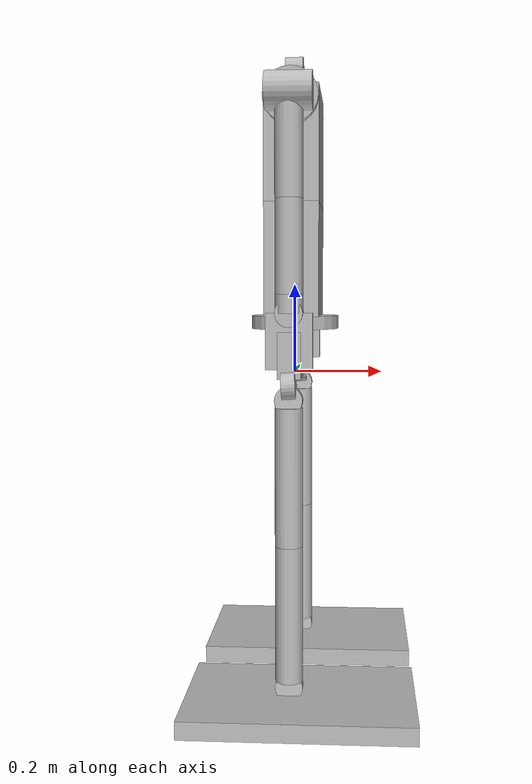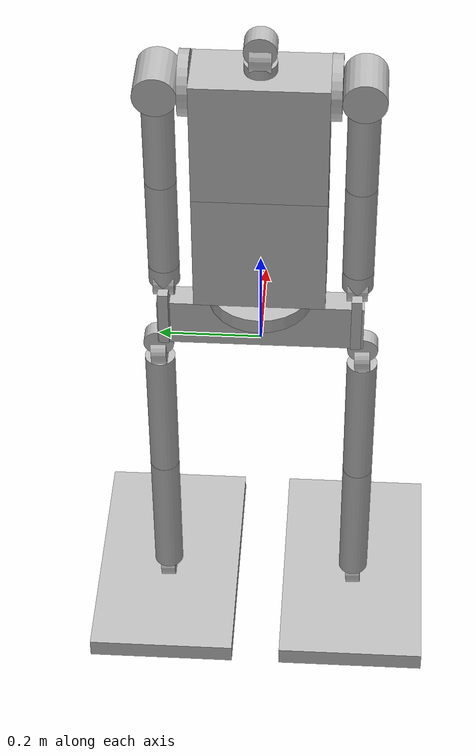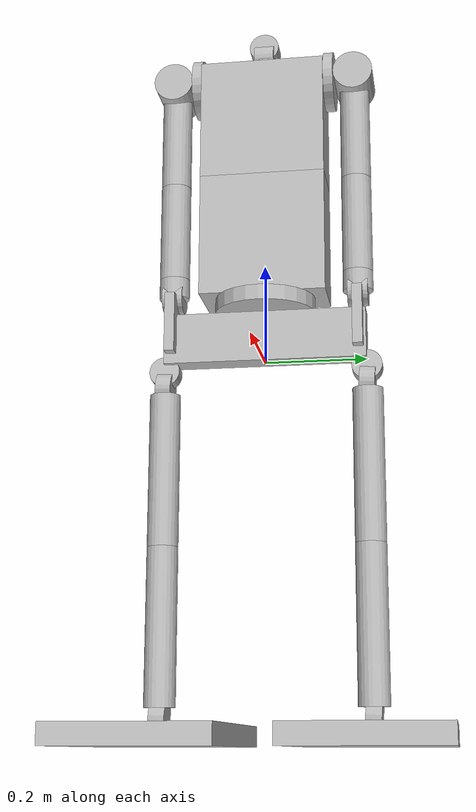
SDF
<sdf version='1.6'>
  <model name='stickRobot'>
    <link name='pelvis'>
      <pose frame=''>0 0 0 0 -0 0</pose>
      <inertial>
        <pose frame=''>0 0 0.05 0 -0 0</pose>
        <mass>2</mass>
        <inertia>
          <ixx>0.008667</ixx>
          <ixy>0</ixy>
          <ixz>0</ixz>
          <iyy>0.008667</iyy>
          <iyz>0</iyz>
          <izz>0.01667</izz>
        </inertia>
      </inertial>
      <collision name='pelvis_collision'>
        <pose frame=''>0 -0 0.05 0 -0 0</pose>
        <geometry>
          <box>
            <size>0.05 0.4 0.1</size>
          </box>
        </geometry>
        <surface>
          <contact>
            <ode/>
          </contact>
          <friction>
            <ode/>
          </friction>
        </surface>
      </collision>
      <visual name='pelvis_visual'>
        <pose frame=''>0 -0 0.05 0 -0 0</pose>
        <geometry>
          <box>
            <size>0.05 0.4 0.1</size>
          </box>
        </geometry>
        <material>
          <script>
            <uri>__default__</uri>
            <name>__default__</name>
          </script>
        </material>
      </visual>
      <gravity>1</gravity>
      <velocity_decay/>
      <sensor name='pelvisMiddleImu' type='imu'>
        <always_on>1</always_on>
        <pose frame=''>0 0 0 0 -0 0</pose>
        <imu>
          <angular_velocity>
            <x>
              <noise type='gaussian'>
                <mean>0</mean>
                <stddev>0.0002</stddev>
                <bias_mean>7.5e-06</bias_mean>
                <bias_stddev>8e-07</bias_stddev>
              </noise>
            </x>
            <y>
              <noise type='gaussian'>
                <mean>0</mean>
                <stddev>0.0002</stddev>
                <bias_mean>7.5e-06</bias_mean>
                <bias_stddev>8e-07</bias_stddev>
              </noise>
            </y>
            <z>
              <noise type='gaussian'>
                <mean>0</mean>
                <stddev>0.0002</stddev>
                <bias_mean>7.5e-06</bias_mean>
                <bias_stddev>8e-07</bias_stddev>
              </noise>
            </z>
          </angular_velocity>
          <linear_acceleration>
            <x>
              <noise type='gaussian'>
                <mean>0</mean>
                <stddev>0.017</stddev>
                <bias_mean>0.1</bias_mean>
                <bias_stddev>0.001</bias_stddev>
              </noise>
            </x>
            <y>
              <noise type='gaussian'>
                <mean>0</mean>
                <stddev>0.017</stddev>
                <bias_mean>0.1</bias_mean>
                <bias_stddev>0.001</bias_stddev>
              </noise>
            </y>
            <z>
              <noise type='gaussian'>
                <mean>0</mean>
                <stddev>0.017</stddev>
                <bias_mean>0.1</bias_mean>
                <bias_stddev>0.001</bias_stddev>
              </noise>
            </z>
          </linear_acceleration>
        </imu>
      </sensor>
    </link>
    <link name='leftHipYawLink'>
      <pose frame=''>0 0.2 0 0 -0 0</pose>
      <inertial>
        <pose frame=''>0 0 -0.015 0 -0 0</pose>
        <mass>2</mass>
        <inertia>
          <ixx>0.00015</ixx>
          <ixy>0</ixy>
          <ixz>0</ixz>
          <iyy>0.00015</iyy>
          <iyz>0</iyz>
          <izz>0.000225</izz>
        </inertia>
      </inertial>
      <collision name='leftHipYawLink_collision'>
        <pose frame=''>0 0 -0.015 1.507 -0 0</pose>
        <geometry>
          <cylinder>
            <length>0.03</length>
            <radius>0.03</radius>
          </cylinder>
        </geometry>
      </collision>
      <visual name='leftHipYawLink_visual'>
        <pose frame=''>0 0 -0.015 0 1.507 0</pose>
        <geometry>
          <cylinder>
            <length>0.03</length>
            <radius>0.03</radius>
          </cylinder>
        </geometry>
      </visual>
    </link>
    <joint name='leftHipYaw' type='revolute'>
      <child>leftHipYawLink</child>
      <parent>pelvis</parent>
      <axis>
        <xyz>0 0 1</xyz>
        <limit>
          <lower>-3.14</lower>
          <upper>3.14</upper>
          <effort>100</effort>
          <velocity>1</velocity>
        </limit>
        <dynamics>
          <damping>0.1</damping>
          <friction>0</friction>
          <spring_reference>0</spring_reference>
          <spring_stiffness>0</spring_stiffness>
        </dynamics>
        <use_parent_model_frame>1</use_parent_model_frame>
      </axis>
      <physics>
        <provide_feedback>1</provide_feedback>
        <ode>
          <provide_feedback>1</provide_feedback>
          <limit>
            <cfm>0</cfm>
            <erp>0.2</erp>
          </limit>
        </ode>
      </physics>
    </joint>
    <link name='leftHipRollLink'>
      <pose frame=''>0 0.2 -0.03 0 -0 0</pose>
      <inertial>
        <pose frame=''>0 0 -0.015 0 -0 0</pose>
        <mass>2</mass>
        <inertia>
          <ixx>0.00015</ixx>
          <ixy>0</ixy>
          <ixz>0</ixz>
          <iyy>0.00015</iyy>
          <iyz>0</iyz>
          <izz>0.000225</izz>
        </inertia>
      </inertial>
      <collision name='leftHipRollLink_collision'>
        <pose frame=''>0 0 -0.015 1.507 -0 0</pose>
        <geometry>
          <cylinder>
            <length>0.03</length>
            <radius>0.03</radius>
          </cylinder>
        </geometry>
      </collision>
      <visual name='leftHipRollLink_visual'>
        <pose frame=''>0 0 -0.015 1.507 -0 0</pose>
        <geometry>
          <cylinder>
            <length>0.03</length>
            <radius>0.03</radius>
          </cylinder>
        </geometry>
      </visual>
    </link>
    <joint name='leftHipRoll' type='revolute'>
      <child>leftHipRollLink</child>
      <parent>leftHipYawLink</parent>
      <axis>
        <xyz>0 1 0</xyz>
        <limit>
          <lower>-3.14</lower>
          <upper>3.14</upper>
          <effort>100</effort>
          <velocity>1</velocity>
        </limit>
        <dynamics>
          <damping>0.1</damping>
          <friction>0</friction>
          <spring_reference>0</spring_reference>
          <spring_stiffness>0</spring_stiffness>
        </dynamics>
        <use_parent_model_frame>1</use_parent_model_frame>
      </axis>
      <physics>
        <provide_feedback>1</provide_feedback>
        <ode>
          <provide_feedback>1</provide_feedback>
          <limit>
            <cfm>0</cfm>
            <erp>0.2</erp>
          </limit>
        </ode>
      </physics>
    </joint>
    <link name='leftHipPitchLink'>
      <pose frame=''>0 0.2 -0.06 0 -0 0</pose>
      <inertial>
        <pose frame=''>-0 0 -0.15 0 -0 0</pose>
        <mass>2</mass>
        <inertia>
          <ixx>0.01545</ixx>
          <ixy>0</ixy>
          <ixz>0</ixz>
          <iyy>0.01545</iyy>
          <iyz>0</iyz>
          <izz>0.0009</izz>
        </inertia>
      </inertial>
      <collision name='leftHipPitchLink_collision'>
        <pose frame=''>0 0 -0.3 0 -0 0</pose>
        <geometry>
          <cylinder>
            <length>0.3</length>
            <radius>0.03</radius>
          </cylinder>
        </geometry>
      </collision>
      <visual name='leftHipPitchLink_visual'>
        <pose frame=''>0 0 -0.15 0 -0 0</pose>
        <geometry>
          <cylinder>
            <length>0.3</length>
            <radius>0.03</radius>
          </cylinder>
        </geometry>
      </visual>
    </link>
    <joint name='leftHipPitch' type='revolute'>
      <child>leftHipPitchLink</child>
      <parent>leftHipRollLink</parent>
      <axis>
        <xyz>1 0 0</xyz>
        <limit>
          <lower>-3.14</lower>
          <upper>3.14</upper>
          <effort>100</effort>
          <velocity>1</velocity>
        </limit>
        <dynamics>
          <damping>0.1</damping>
          <friction>0</friction>
          <spring_reference>0</spring_reference>
          <spring_stiffness>0</spring_stiffness>
        </dynamics>
        <use_parent_model_frame>1</use_parent_model_frame>
      </axis>
      <physics>
        <provide_feedback>1</provide_feedback>
        <ode>
          <provide_feedback>1</provide_feedback>
          <limit>
            <cfm>0</cfm>
            <erp>0.2</erp>
          </limit>
        </ode>
      </physics>
    </joint>
    <link name='leftKneePitchLink'>
      <pose frame=''>0 0.2 -0.36 0 -0 0</pose>
      <inertial>
        <pose frame=''>-0 0 -0.15 0 -0 0</pose>
        <mass>2</mass>
        <inertia>
          <ixx>0.01545</ixx>
          <ixy>0</ixy>
          <ixz>0</ixz>
          <iyy>0.01545</iyy>
          <iyz>0</iyz>
          <izz>0.0009</izz>
        </inertia>
      </inertial>
      <collision name='leftKneePitchLink_collision'>
        <pose frame=''>0 0 -0.15 0 -0 0</pose>
        <geometry>
          <cylinder>
            <length>0.3</length>
            <radius>0.03</radius>
          </cylinder>
        </geometry>
      </collision>
      <visual name='leftKneePitchLink_visual'>
        <pose frame=''>0 0 -0.15 0 -0 0</pose>
        <geometry>
          <cylinder>
            <length>0.3</length>
            <radius>0.03</radius>
          </cylinder>
        </geometry>
      </visual>
    </link>
    <joint name='leftKneePitch' type='revolute'>
      <child>leftKneePitchLink</child>
      <parent>leftHipPitchLink</parent>
      <axis>
        <xyz>0 1 0</xyz>
        <limit>
          <lower>-3.14</lower>
          <upper>3.14</upper>
          <effort>100</effort>
          <velocity>1</velocity>
        </limit>
        <dynamics>
          <damping>0.1</damping>
          <friction>0</friction>
          <spring_reference>0</spring_reference>
          <spring_stiffness>0</spring_stiffness>
        </dynamics>
        <use_parent_model_frame>1</use_parent_model_frame>
      </axis>
      <physics>
        <provide_feedback>1</provide_feedback>
        <ode>
          <provide_feedback>1</provide_feedback>
          <limit>
            <cfm>0</cfm>
            <erp>0.2</erp>
          </limit>
        </ode>
      </physics>
    </joint>
    <link name='leftAnklePitchLink'>
      <pose frame=''>0 0.2 -0.66 0 -0 0</pose>
      <inertial>
        <pose frame=''>0 0 -0.015 0 -0 0</pose>
        <mass>3</mass>
        <inertia>
          <ixx>0.00015</ixx>
          <ixy>0</ixy>
          <ixz>0</ixz>
          <iyy>0.00015</iyy>
          <iyz>0</iyz>
          <izz>0.000225</izz>
        </inertia>
      </inertial>
      <collision name='leftAnklePitchLink_collision'>
        <pose frame=''>0 0 -0.015 0 -0 0</pose>
        <geometry>
          <cylinder>
            <length>0.03</length>
            <radius>0.03</radius>
          </cylinder>
        </geometry>
      </collision>
      <visual name='leftAnklePitchLink_visual'>
        <pose frame=''>0 0 -0.015 1.507 -0 0</pose>
        <geometry>
          <cylinder>
            <length>0.03</length>
            <radius>0.03</radius>
          </cylinder>
        </geometry>
      </visual>
    </link>
    <joint name='leftAnklePitch' type='revolute'>
      <child>leftAnklePitchLink</child>
      <parent>leftKneePitchLink</parent>
      <axis>
        <xyz>0 1 0</xyz>
        <limit>
          <lower>-3.14</lower>
          <upper>3.14</upper>
          <effort>100</effort>
          <velocity>1</velocity>
        </limit>
        <dynamics>
          <damping>0.1</damping>
          <friction>0</friction>
          <spring_reference>0</spring_reference>
          <spring_stiffness>0</spring_stiffness>
        </dynamics>
        <use_parent_model_frame>1</use_parent_model_frame>
      </axis>
      <physics>
        <provide_feedback>1</provide_feedback>
        <ode>
          <provide_feedback>1</provide_feedback>
          <limit>
            <cfm>0</cfm>
            <erp>0.2</erp>
          </limit>
        </ode>
      </physics>
    </joint>
    <link name='leftFoot'>
      <pose frame=''>0.025 0.2 -0.69 0 -0 0</pose>
      <inertial>
        <pose frame=''>0.03 0 -0.01 0 -0 0</pose>
        <mass>10</mass>
        <inertia>
          <ixx>0.008667</ixx>
          <ixy>0</ixy>
          <ixz>0</ixz>
          <iyy>0.008667</iyy>
          <iyz>0</iyz>
          <izz>0.01667</izz>
        </inertia>
      </inertial>
      <collision name='leftFoot_collision'>
        <pose frame=''>0 0 -0.02 0 -0 0</pose>
        <geometry>
          <box>
            <size>0.5 0.3 0.04</size>
          </box>
        </geometry>
      </collision>
      <visual name='leftFoot_visual'>
        <pose frame=''>0 0 -0.02 0 -0 0</pose>
        <geometry>
          <box>
            <size>0.5 0.3 0.04</size>
          </box>
        </geometry>
      </visual>
    </link>
    <joint name='leftAnkleRoll' type='revolute'>
      <child>leftFoot</child>
      <parent>leftAnklePitchLink</parent>
      <axis>
        <xyz>1 0 0</xyz>
        <limit>
          <lower>-3.14</lower>
          <upper>3.14</upper>
          <effort>100</effort>
          <velocity>1</velocity>
        </limit>
        <dynamics>
          <damping>0.1</damping>
          <friction>0</friction>
          <spring_reference>0</spring_reference>
          <spring_stiffness>0</spring_stiffness>
        </dynamics>
        <use_parent_model_frame>1</use_parent_model_frame>
      </axis>
      <physics>
        <provide_feedback>1</provide_feedback>
        <ode>
          <provide_feedback>1</provide_feedback>
          <limit>
            <cfm>0</cfm>
            <erp>0.2</erp>
          </limit>
        </ode>
      </physics>
      <sensor name='leftFootSixAxis' type='force_torque'>
        <pose frame=''>0.021565 0 -0.051054 3.14 -0 0</pose>
        <always_on>1</always_on>
        <update_rate>1000</update_rate>
        <force_torque>
          <frame>sensor</frame>
        </force_torque>
      </sensor>
    </joint>
    <link name='rightHipYawLink'>
      <pose frame=''>0 -0.2 0 0 -0 0</pose>
      <inertial>
        <pose frame=''>0 0 -0.015 0 -0 0</pose>
        <mass>2</mass>
        <inertia>
          <ixx>0.00015</ixx>
          <ixy>0</ixy>
          <ixz>0</ixz>
          <iyy>0.00015</iyy>
          <iyz>0</iyz>
          <izz>0.000225</izz>
        </inertia>
      </inertial>
      <collision name='rightHipYawLink_collision'>
        <pose frame=''>0 0 -0.015 1.507 -0 0</pose>
        <geometry>
          <cylinder>
            <length>0.03</length>
            <radius>0.03</radius>
          </cylinder>
        </geometry>
      </collision>
      <visual name='rightHipYawLink_visual'>
        <pose frame=''>0 0 -0.015 0 1.507 0</pose>
        <geometry>
          <cylinder>
            <length>0.03</length>
            <radius>0.03</radius>
          </cylinder>
        </geometry>
      </visual>
    </link>
    <joint name='rightHipYaw' type='revolute'>
      <child>rightHipYawLink</child>
      <parent>pelvis</parent>
      <axis>
        <xyz>0 0 1</xyz>
        <limit>
          <lower>-3.14</lower>
          <upper>3.14</upper>
          <effort>100</effort>
          <velocity>1</velocity>
        </limit>
        <dynamics>
          <damping>0.1</damping>
          <friction>0</friction>
          <spring_reference>0</spring_reference>
          <spring_stiffness>0</spring_stiffness>
        </dynamics>
        <use_parent_model_frame>1</use_parent_model_frame>
      </axis>
      <physics>
        <provide_feedback>1</provide_feedback>
        <ode>
          <provide_feedback>1</provide_feedback>
          <limit>
            <cfm>0</cfm>
            <erp>0.2</erp>
          </limit>
        </ode>
      </physics>
    </joint>
    <link name='rightHipRollLink'>
      <pose frame=''>0 -0.2 -0.03 0 -0 0</pose>
      <inertial>
        <pose frame=''>0 0 -0.015 0 -0 0</pose>
        <mass>2</mass>
        <inertia>
          <ixx>0.00015</ixx>
          <ixy>0</ixy>
          <ixz>0</ixz>
          <iyy>0.00015</iyy>
          <iyz>0</iyz>
          <izz>0.000225</izz>
        </inertia>
      </inertial>
      <collision name='rightHipRollLink_collision'>
        <pose frame=''>0 0 -0.015 1.507 -0 0</pose>
        <geometry>
          <cylinder>
            <length>0.03</length>
            <radius>0.03</radius>
          </cylinder>
        </geometry>
      </collision>
      <visual name='rightHipRollLink_visual'>
        <pose frame=''>0 0 -0.015 1.507 -0 0</pose>
        <geometry>
          <cylinder>
            <length>0.03</length>
            <radius>0.03</radius>
          </cylinder>
        </geometry>
      </visual>
    </link>
    <joint name='rightHipRoll' type='revolute'>
      <child>rightHipRollLink</child>
      <parent>rightHipYawLink</parent>
      <axis>
        <xyz>0 1 0</xyz>
        <limit>
          <lower>-3.14</lower>
          <upper>3.14</upper>
          <effort>100</effort>
          <velocity>1</velocity>
        </limit>
        <dynamics>
          <damping>0.1</damping>
          <friction>0</friction>
          <spring_reference>0</spring_reference>
          <spring_stiffness>0</spring_stiffness>
        </dynamics>
        <use_parent_model_frame>1</use_parent_model_frame>
      </axis>
      <physics>
        <provide_feedback>1</provide_feedback>
        <ode>
          <provide_feedback>1</provide_feedback>
          <limit>
            <cfm>0</cfm>
            <erp>0.2</erp>
          </limit>
        </ode>
      </physics>
    </joint>
    <link name='rightHipPitchLink'>
      <pose frame=''>0 -0.2 -0.06 0 -0 0</pose>
      <inertial>
        <pose frame=''>-0 0 -0.15 0 -0 0</pose>
        <mass>2</mass>
        <inertia>
          <ixx>0.01545</ixx>
          <ixy>0</ixy>
          <ixz>0</ixz>
          <iyy>0.01545</iyy>
          <iyz>0</iyz>
          <izz>0.0009</izz>
        </inertia>
      </inertial>
      <collision name='rightHipPitchLink_collision'>
        <pose frame=''>0 0 -0.3 0 -0 0</pose>
        <geometry>
          <cylinder>
            <length>0.3</length>
            <radius>0.03</radius>
          </cylinder>
        </geometry>
      </collision>
      <visual name='rightHipPitchLink_visual'>
        <pose frame=''>0 0 -0.15 0 -0 0</pose>
        <geometry>
          <cylinder>
            <length>0.3</length>
            <radius>0.03</radius>
          </cylinder>
        </geometry>
      </visual>
    </link>
    <joint name='rightHipPitch' type='revolute'>
      <child>rightHipPitchLink</child>
      <parent>rightHipRollLink</parent>
      <axis>
        <xyz>1 0 0</xyz>
        <limit>
          <lower>-3.14</lower>
          <upper>3.14</upper>
          <effort>100</effort>
          <velocity>1</velocity>
        </limit>
        <dynamics>
          <damping>0.1</damping>
          <friction>0</friction>
          <spring_reference>0</spring_reference>
          <spring_stiffness>0</spring_stiffness>
        </dynamics>
        <use_parent_model_frame>1</use_parent_model_frame>
      </axis>
      <physics>
        <provide_feedback>1</provide_feedback>
        <ode>
          <provide_feedback>1</provide_feedback>
          <limit>
            <cfm>0</cfm>
            <erp>0.2</erp>
          </limit>
        </ode>
      </physics>
    </joint>
    <link name='rightKneePitchLink'>
      <pose frame=''>0 -0.2 -0.36 0 -0 0</pose>
      <inertial>
        <pose frame=''>-0 0 -0.15 0 -0 0</pose>
        <mass>2</mass>
        <inertia>
          <ixx>0.01545</ixx>
          <ixy>0</ixy>
          <ixz>0</ixz>
          <iyy>0.01545</iyy>
          <iyz>0</iyz>
          <izz>0.0009</izz>
        </inertia>
      </inertial>
      <collision name='rightKneePitchLink_collision'>
        <pose frame=''>0 0 -0.15 0 -0 0</pose>
        <geometry>
          <cylinder>
            <length>0.3</length>
            <radius>0.03</radius>
          </cylinder>
        </geometry>
      </collision>
      <visual name='rightKneePitchLink_visual'>
        <pose frame=''>0 0 -0.15 0 -0 0</pose>
        <geometry>
          <cylinder>
            <length>0.3</length>
            <radius>0.03</radius>
          </cylinder>
        </geometry>
      </visual>
    </link>
    <joint name='rightKneePitch' type='revolute'>
      <child>rightKneePitchLink</child>
      <parent>rightHipPitchLink</parent>
      <axis>
        <xyz>0 1 0</xyz>
        <limit>
          <lower>-3.14</lower>
          <upper>3.14</upper>
          <effort>100</effort>
          <velocity>1</velocity>
        </limit>
        <dynamics>
          <damping>0.1</damping>
          <friction>0</friction>
          <spring_reference>0</spring_reference>
          <spring_stiffness>0</spring_stiffness>
        </dynamics>
        <use_parent_model_frame>1</use_parent_model_frame>
      </axis>
      <physics>
        <provide_feedback>1</provide_feedback>
        <ode>
          <provide_feedback>1</provide_feedback>
          <limit>
            <cfm>0</cfm>
            <erp>0.2</erp>
          </limit>
        </ode>
      </physics>
    </joint>
    <link name='rightAnklePitchLink'>
      <pose frame=''>0 -0.2 -0.66 0 -0 0</pose>
      <inertial>
        <pose frame=''>0 0 -0.015 0 -0 0</pose>
        <mass>3</mass>
        <inertia>
          <ixx>0.00015</ixx>
          <ixy>0</ixy>
          <ixz>0</ixz>
          <iyy>0.00015</iyy>
          <iyz>0</iyz>
          <izz>0.000225</izz>
        </inertia>
      </inertial>
      <collision name='rightAnklePitchLink_collision'>
        <pose frame=''>0 0 -0.015 1.507 -0 0</pose>
        <geometry>
          <cylinder>
            <length>0.03</length>
            <radius>0.03</radius>
          </cylinder>
        </geometry>
      </collision>
      <visual name='rightAnklePitchLink_visual'>
        <pose frame=''>0 0 -0.015 1.507 -0 0</pose>
        <geometry>
          <cylinder>
            <length>0.03</length>
            <radius>0.03</radius>
          </cylinder>
        </geometry>
      </visual>
    </link>
    <joint name='rightAnklePitch' type='revolute'>
      <child>rightAnklePitchLink</child>
      <parent>rightKneePitchLink</parent>
      <axis>
        <xyz>0 1 0</xyz>
        <limit>
          <lower>-3.14</lower>
          <upper>3.14</upper>
          <effort>100</effort>
          <velocity>1</velocity>
        </limit>
        <dynamics>
          <damping>0.1</damping>
          <friction>0</friction>
          <spring_reference>0</spring_reference>
          <spring_stiffness>0</spring_stiffness>
        </dynamics>
        <use_parent_model_frame>1</use_parent_model_frame>
      </axis>
      <physics>
        <provide_feedback>1</provide_feedback>
        <ode>
          <provide_feedback>1</provide_feedback>
          <limit>
            <cfm>0</cfm>
            <erp>0.2</erp>
          </limit>
        </ode>
      </physics>
    </joint>
    <link name='rightFoot'>
      <pose frame=''>0.025 -0.2 -0.69 0 -0 0</pose>
      <inertial>
        <pose frame=''>0.03 0 -0.02 0 -0 0</pose>
        <mass>10</mass>
        <inertia>
          <ixx>0.008667</ixx>
          <ixy>0</ixy>
          <ixz>0</ixz>
          <iyy>0.008667</iyy>
          <iyz>0</iyz>
          <izz>0.01667</izz>
        </inertia>
      </inertial>
      <collision name='rightFoot_collision'>
        <pose frame=''>0 0 -0.02 0 -0 0</pose>
        <geometry>
          <box>
            <size>0.5 0.3 0.04</size>
          </box>
        </geometry>
      </collision>
      <visual name='rightFoot_visual'>
        <pose frame=''>0 0 -0.02 0 -0 0</pose>
        <geometry>
          <box>
            <size>0.5 0.3 0.04</size>
          </box>
        </geometry>
      </visual>
    </link>
    <joint name='rightAnkleRoll' type='revolute'>
      <child>rightFoot</child>
      <parent>rightAnklePitchLink</parent>
      <axis>
        <xyz>1 0 0</xyz>
        <limit>
          <lower>-3.14</lower>
          <upper>3.14</upper>
          <effort>100</effort>
          <velocity>1</velocity>
        </limit>
        <dynamics>
          <damping>0.1</damping>
          <friction>0</friction>
          <spring_reference>0</spring_reference>
          <spring_stiffness>0</spring_stiffness>
        </dynamics>
        <use_parent_model_frame>1</use_parent_model_frame>
      </axis>
      <physics>
        <provide_feedback>1</provide_feedback>
        <ode>
          <provide_feedback>1</provide_feedback>
          <limit>
            <cfm>0</cfm>
            <erp>0.2</erp>
          </limit>
        </ode>
      </physics>
      <sensor name='rightFootSixAxis' type='force_torque'>
        <pose frame=''>0.021565 0 -0.051054 3.14 -0 0</pose>
        <always_on>1</always_on>
        <update_rate>1000</update_rate>
        <force_torque>
          <frame>sensor</frame>
        </force_torque>
      </sensor>
    </joint>
    <link name='torsoYawLink'>
      <pose frame=''>0 0 0.1 0 -0 0</pose>
      <inertial>
        <pose frame=''>0 0 0.125 0 -0 0</pose>
        <mass>1</mass>
        <inertia>
          <ixx>0.028125</ixx>
          <ixy>0</ixy>
          <ixz>0</ixz>
          <iyy>0.045</iyy>
          <iyz>0</iyz>
          <izz>0.028125</izz>
        </inertia>
      </inertial>
      <collision name='torsoYawLink_collision'>
        <pose frame=''>0 0 0.015 0 -0 0</pose>
        <geometry>
          <cylinder>
            <length>0.03</length>
            <radius>0.1</radius>
          </cylinder>
        </geometry>
      </collision>
      <visual name='torsoYawLink_visual'>
        <pose frame=''>0 0 0.015 0 -0 0</pose>
        <geometry>
          <cylinder>
            <length>0.03</length>
            <radius>0.1</radius>
          </cylinder>
        </geometry>
      </visual>
    </link>
    <joint name='torsoYaw' type='revolute'>
      <child>torsoYawLink</child>
      <parent>pelvis</parent>
      <axis>
        <xyz>0 0 1</xyz>
        <limit>
          <lower>-3.14</lower>
          <upper>3.14</upper>
          <effort>100</effort>
          <velocity>10</velocity>
        </limit>
        <dynamics>
          <damping>0.1</damping>
          <friction>0</friction>
          <spring_reference>0</spring_reference>
          <spring_stiffness>0</spring_stiffness>
        </dynamics>
        <use_parent_model_frame>1</use_parent_model_frame>
      </axis>
      <physics>
        <provide_feedback>1</provide_feedback>
        <ode>
          <provide_feedback>1</provide_feedback>
          <limit>
            <cfm>0</cfm>
            <erp>0.2</erp>
          </limit>
        </ode>
      </physics>
    </joint>
    <link name='torsoPitchLink'>
      <pose frame=''>0 0 0.13 0 -0 0</pose>
      <inertial>
        <pose frame=''>0 0 0.125 0 -0 0</pose>
        <mass>2</mass>
        <inertia>
          <ixx>0.028125</ixx>
          <ixy>0</ixy>
          <ixz>0</ixz>
          <iyy>0.045</iyy>
          <iyz>0</iyz>
          <izz>0.028125</izz>
        </inertia>
      </inertial>
      <collision name='torsoPitchLink_collision'>
        <pose frame=''>0 0 0.125 0 -0 0</pose>
        <geometry>
          <box>
            <size>0.12 0.25 0.25</size>
          </box>
        </geometry>
      </collision>
      <visual name='torsoPitchLink_visual'>
        <pose frame=''>0 0 0.125 0 -0 0</pose>
        <geometry>
          <box>
            <size>0.12 0.25 0.25</size>
          </box>
        </geometry>
      </visual>
    </link>
    <joint name='torsoPitch' type='revolute'>
      <child>torsoPitchLink</child>
      <parent>torsoYawLink</parent>
      <axis>
        <xyz>0 1 0</xyz>
        <limit>
          <lower>-3.14</lower>
          <upper>3.14</upper>
          <effort>100</effort>
          <velocity>10</velocity>
        </limit>
        <dynamics>
          <damping>0.1</damping>
          <friction>0</friction>
          <spring_reference>0</spring_reference>
          <spring_stiffness>0</spring_stiffness>
        </dynamics>
        <use_parent_model_frame>1</use_parent_model_frame>
      </axis>
      <physics>
        <provide_feedback>1</provide_feedback>
        <ode>
          <provide_feedback>1</provide_feedback>
          <limit>
            <cfm>0</cfm>
            <erp>0.2</erp>
          </limit>
        </ode>
      </physics>
    </joint>
    <link name='chest'>
      <pose frame=''>0 0 0.38 0 -0 0</pose>
      <inertial>
        <pose frame=''>0 0 0.125 0 -0 0</pose>
        <mass>2</mass>
        <inertia>
          <ixx>0.028125</ixx>
          <ixy>0</ixy>
          <ixz>0</ixz>
          <iyy>0.045</iyy>
          <iyz>0</iyz>
          <izz>0.028125</izz>
        </inertia>
      </inertial>
      <collision name='chest_collision'>
        <pose frame=''>0 0 0.125 0 -0 0</pose>
        <geometry>
          <box>
            <size>0.12 0.25 0.25</size>
          </box>
        </geometry>
      </collision>
      <visual name='chest_visual'>
        <pose frame=''>0 0 0.125 0 -0 0</pose>
        <geometry>
          <box>
            <size>0.12 0.25 0.25</size>
          </box>
        </geometry>
      </visual>
    </link>
    <joint name='torsoRoll' type='revolute'>
      <child>chest</child>
      <parent>torsoPitchLink</parent>
      <axis>
        <xyz>0 1 0</xyz>
        <limit>
          <lower>-3.14</lower>
          <upper>3.14</upper>
          <effort>100</effort>
          <velocity>10</velocity>
        </limit>
        <dynamics>
          <damping>0.1</damping>
          <friction>0</friction>
          <spring_reference>0</spring_reference>
          <spring_stiffness>0</spring_stiffness>
        </dynamics>
        <use_parent_model_frame>1</use_parent_model_frame>
      </axis>
      <physics>
        <provide_feedback>1</provide_feedback>
        <ode>
          <provide_feedback>1</provide_feedback>
          <limit>
            <cfm>0</cfm>
            <erp>0.2</erp>
          </limit>
        </ode>
      </physics>
    </joint>
    <link name='leftShoulderPitchLink'>
      <pose frame=''>0 0.125 0.6 0 -0 0</pose>
      <inertial>
        <pose frame=''>0 0.01 0 0 -0 0</pose>
        <mass>1</mass>
        <inertia>
          <ixx>0.028125</ixx>
          <ixy>0</ixy>
          <ixz>0</ixz>
          <iyy>0.045</iyy>
          <iyz>0</iyz>
          <izz>0.028125</izz>
        </inertia>
      </inertial>
      <collision name='leftShoulderPitchLink_collision'>
        <pose frame=''>0 0.01 0 1.57 -0 0</pose>
        <geometry>
          <cylinder>
            <length>0.02</length>
            <radius>0.06</radius>
          </cylinder>
        </geometry>
      </collision>
      <visual name='leftShoulderPitchLink_visual'>
        <pose frame=''>0 0.01 0 1.57 -0 0</pose>
        <geometry>
          <cylinder>
            <length>0.02</length>
            <radius>0.06</radius>
          </cylinder>
        </geometry>
      </visual>
    </link>
    <joint name='leftShoulderPitch' type='revolute'>
      <child>leftShoulderPitchLink</child>
      <parent>chest</parent>
      <axis>
        <xyz>0 1 0</xyz>
        <limit>
          <lower>-3.14</lower>
          <upper>3.14</upper>
          <effort>100</effort>
          <velocity>10</velocity>
        </limit>
        <dynamics>
          <damping>0.1</damping>
          <friction>0</friction>
          <spring_reference>0</spring_reference>
          <spring_stiffness>0</spring_stiffness>
        </dynamics>
        <use_parent_model_frame>1</use_parent_model_frame>
      </axis>
      <physics>
        <provide_feedback>1</provide_feedback>
        <ode>
          <provide_feedback>1</provide_feedback>
          <limit>
            <cfm>0</cfm>
            <erp>0.2</erp>
          </limit>
        </ode>
      </physics>
    </joint>
    <link name='leftShoulderRollLink'>
      <pose frame=''>0 0.165 0.6 0 -0 0</pose>
      <inertial>
        <pose frame=''>0 0.02 0 0 -0 0</pose>
        <mass>1</mass>
        <inertia>
          <ixx>0.028125</ixx>
          <ixy>0</ixy>
          <ixz>0</ixz>
          <iyy>0.045</iyy>
          <iyz>0</iyz>
          <izz>0.028125</izz>
        </inertia>
      </inertial>
      <collision name='leftShoulderRollLink_collision'>
        <pose frame=''>0 0.02 0 0 1.57 0</pose>
        <geometry>
          <cylinder>
            <length>0.1</length>
            <radius>0.04</radius>
          </cylinder>
        </geometry>
      </collision>
      <visual name='leftShoulderRollLink_visual'>
        <pose frame=''>0 0.02 0 0 1.57 0</pose>
        <geometry>
          <cylinder>
            <length>0.1</length>
            <radius>0.04</radius>
          </cylinder>
        </geometry>
      </visual>
    </link>
    <joint name='leftShoulderRoll' type='revolute'>
      <child>leftShoulderRollLink</child>
      <parent>leftShoulderPitchLink</parent>
      <axis>
        <xyz>1 0 0</xyz>
        <limit>
          <lower>-3.14</lower>
          <upper>3.14</upper>
          <effort>100</effort>
          <velocity>10</velocity>
        </limit>
        <dynamics>
          <damping>0.1</damping>
          <friction>0</friction>
          <spring_reference>0</spring_reference>
          <spring_stiffness>0</spring_stiffness>
        </dynamics>
        <use_parent_model_frame>1</use_parent_model_frame>
      </axis>
      <physics>
        <provide_feedback>1</provide_feedback>
        <ode>
          <provide_feedback>1</provide_feedback>
          <limit>
            <cfm>0</cfm>
            <erp>0.2</erp>
          </limit>
        </ode>
      </physics>
    </joint>
    <link name='leftShoulderYawLink'>
      <pose frame=''>0 0.185 0.58 0 -0 0</pose>
      <inertial>
        <pose frame=''>0 0 -0.1 0 -0 0</pose>
        <mass>2</mass>
        <inertia>
          <ixx>0.028125</ixx>
          <ixy>0</ixy>
          <ixz>0</ixz>
          <iyy>0.045</iyy>
          <iyz>0</iyz>
          <izz>0.028125</izz>
        </inertia>
      </inertial>
      <collision name='leftShoulderYawLink_collision'>
        <pose frame=''>0 0 -0.1 0 -0 0</pose>
        <geometry>
          <cylinder>
            <length>0.2</length>
            <radius>0.03</radius>
          </cylinder>
        </geometry>
      </collision>
      <visual name='leftShoulderYawLink_visual'>
        <pose frame=''>0 0 -0.1 0 -0 0</pose>
        <geometry>
          <cylinder>
            <length>0.2</length>
            <radius>0.03</radius>
          </cylinder>
        </geometry>
      </visual>
    </link>
    <joint name='leftShoulderYaw' type='revolute'>
      <child>leftShoulderYawLink</child>
      <parent>leftShoulderRollLink</parent>
      <axis>
        <xyz>0 0 1</xyz>
        <limit>
          <lower>-3.14</lower>
          <upper>3.14</upper>
          <effort>100</effort>
          <velocity>10</velocity>
        </limit>
        <dynamics>
          <damping>0.1</damping>
          <friction>0</friction>
          <spring_reference>0</spring_reference>
          <spring_stiffness>0</spring_stiffness>
        </dynamics>
        <use_parent_model_frame>1</use_parent_model_frame>
      </axis>
      <physics>
        <provide_feedback>1</provide_feedback>
        <ode>
          <provide_feedback>1</provide_feedback>
          <limit>
            <cfm>0</cfm>
            <erp>0.2</erp>
          </limit>
        </ode>
      </physics>
    </joint>
    <link name='leftElbowPitchLink'>
      <pose frame=''>0 0.185 0.38 0 -0 0</pose>
      <inertial>
        <pose frame=''>0 0 -0.1 0 -0 0</pose>
        <mass>2</mass>
        <inertia>
          <ixx>0.028125</ixx>
          <ixy>0</ixy>
          <ixz>0</ixz>
          <iyy>0.045</iyy>
          <iyz>0</iyz>
          <izz>0.028125</izz>
        </inertia>
      </inertial>
      <collision name='leftElbowPitchLink_collision'>
        <pose frame=''>0 0 -0.1 0 -0 0</pose>
        <geometry>
          <cylinder>
            <length>0.2</length>
            <radius>0.03</radius>
          </cylinder>
        </geometry>
      </collision>
      <visual name='leftElbowPitchLink_visual'>
        <pose frame=''>0 0 -0.1 0 -0 0</pose>
        <geometry>
          <cylinder>
            <length>0.2</length>
            <radius>0.03</radius>
          </cylinder>
        </geometry>
      </visual>
    </link>
    <joint name='leftElbowPitch' type='revolute'>
      <child>leftElbowPitchLink</child>
      <parent>leftShoulderYawLink</parent>
      <axis>
        <xyz>0 1 0</xyz>
        <limit>
          <lower>-3.14</lower>
          <upper>3.14</upper>
          <effort>100</effort>
          <velocity>10</velocity>
        </limit>
        <dynamics>
          <damping>0.1</damping>
          <friction>0</friction>
          <spring_reference>0</spring_reference>
          <spring_stiffness>0</spring_stiffness>
        </dynamics>
        <use_parent_model_frame>1</use_parent_model_frame>
      </axis>
      <physics>
        <provide_feedback>1</provide_feedback>
        <ode>
          <provide_feedback>1</provide_feedback>
          <limit>
            <cfm>0</cfm>
            <erp>0.2</erp>
          </limit>
        </ode>
      </physics>
    </joint>
    <link name='leftForearmYawLink'>
      <pose frame=''>0 0.185 0.18 0 -0 0</pose>
      <inertial>
        <pose frame=''>0 0 -0.02 0 -0 0</pose>
        <mass>2</mass>
        <inertia>
          <ixx>0.028125</ixx>
          <ixy>0</ixy>
          <ixz>0</ixz>
          <iyy>0.045</iyy>
          <iyz>0</iyz>
          <izz>0.028125</izz>
        </inertia>
      </inertial>
      <collision name='leftForearmYawLink_collision'>
        <pose frame=''>0 0 -0.02 0 -0 0</pose>
        <geometry>
          <cylinder>
            <length>0.04</length>
            <radius>0.03</radius>
          </cylinder>
        </geometry>
      </collision>
      <visual name='leftForearmYawLink_visual'>
        <pose frame=''>0 0 -0.02 0 -0 0</pose>
        <geometry>
          <cylinder>
            <length>0.04</length>
            <radius>0.03</radius>
          </cylinder>
        </geometry>
      </visual>
    </link>
    <joint name='leftForearmYaw' type='revolute'>
      <child>leftForearmYawLink</child>
      <parent>leftElbowPitchLink</parent>
      <axis>
        <xyz>0 0 1</xyz>
        <limit>
          <lower>-3.14</lower>
          <upper>3.14</upper>
          <effort>100</effort>
          <velocity>10</velocity>
        </limit>
        <dynamics>
          <damping>0.1</damping>
          <friction>0</friction>
          <spring_reference>0</spring_reference>
          <spring_stiffness>0</spring_stiffness>
        </dynamics>
        <use_parent_model_frame>1</use_parent_model_frame>
      </axis>
      <physics>
        <provide_feedback>1</provide_feedback>
        <ode>
          <provide_feedback>1</provide_feedback>
          <limit>
            <cfm>0</cfm>
            <erp>0.2</erp>
          </limit>
        </ode>
      </physics>
    </joint>
    <link name='leftWristRollLink'>
      <pose frame=''>0 0.185 0.16 0 -0 0</pose>
      <inertial>
        <pose frame=''>0 0 -0.02 0 -0 0</pose>
        <mass>1</mass>
        <inertia>
          <ixx>0.028125</ixx>
          <ixy>0</ixy>
          <ixz>0</ixz>
          <iyy>0.045</iyy>
          <iyz>0</iyz>
          <izz>0.028125</izz>
        </inertia>
      </inertial>
      <collision name='leftWristRollLink_collision'>
        <pose frame=''>0 0 -0.02 1.57 -0 0</pose>
        <geometry>
          <cylinder>
            <length>0.04</length>
            <radius>0.03</radius>
          </cylinder>
        </geometry>
      </collision>
      <visual name='leftWristRollLink_visual'>
        <pose frame=''>0 0 -0.02 1.57 -0 0</pose>
        <geometry>
          <cylinder>
            <length>0.04</length>
            <radius>0.03</radius>
          </cylinder>
        </geometry>
      </visual>
    </link>
    <joint name='leftWristRoll' type='revolute'>
      <child>leftWristRollLink</child>
      <parent>leftForearmYawLink</parent>
      <axis>
        <xyz>0 1 0</xyz>
        <limit>
          <lower>-3.14</lower>
          <upper>3.14</upper>
          <effort>100</effort>
          <velocity>10</velocity>
        </limit>
        <dynamics>
          <damping>0.1</damping>
          <friction>0</friction>
          <spring_reference>0</spring_reference>
          <spring_stiffness>0</spring_stiffness>
        </dynamics>
        <use_parent_model_frame>1</use_parent_model_frame>
      </axis>
      <physics>
        <provide_feedback>1</provide_feedback>
        <ode>
          <provide_feedback>1</provide_feedback>
          <limit>
            <cfm>0</cfm>
            <erp>0.2</erp>
          </limit>
        </ode>
      </physics>
    </joint>
    <link name='leftPalm'>
      <pose frame=''>0 0.185 0.14 0 -0 0</pose>
      <inertial>
        <pose frame=''>0 0 -0.06 0 -0 0</pose>
        <mass>1</mass>
        <inertia>
          <ixx>0.028125</ixx>
          <ixy>0</ixy>
          <ixz>0</ixz>
          <iyy>0.045</iyy>
          <iyz>0</iyz>
          <izz>0.028125</izz>
        </inertia>
      </inertial>
      <collision name='leftPalm_collision'>
        <pose frame=''>0 0 -0.06 0 -0 0</pose>
        <geometry>
          <box>
            <size>0.1 0.02 0.12</size>
          </box>
        </geometry>
      </collision>
      <visual name='leftPalm_visual'>
        <pose frame=''>0 0 -0.06 0 -0 0</pose>
        <geometry>
          <box>
            <size>0.1 0.02 0.12</size>
          </box>
        </geometry>
      </visual>
    </link>
    <joint name='leftWristPitch' type='revolute'>
      <child>leftPalm</child>
      <parent>leftWristRollLink</parent>
      <axis>
        <xyz>0 1 0</xyz>
        <limit>
          <lower>-3.14</lower>
          <upper>3.14</upper>
          <effort>100</effort>
          <velocity>10</velocity>
        </limit>
        <dynamics>
          <damping>0.1</damping>
          <friction>0</friction>
          <spring_reference>0</spring_reference>
          <spring_stiffness>0</spring_stiffness>
        </dynamics>
        <use_parent_model_frame>1</use_parent_model_frame>
      </axis>
      <physics>
        <provide_feedback>1</provide_feedback>
        <ode>
          <provide_feedback>1</provide_feedback>
          <limit>
            <cfm>0</cfm>
            <erp>0.2</erp>
          </limit>
        </ode>
      </physics>
    </joint>
    <link name='neckYawLink'>
      <pose frame=''>0 0 0.63 0 -0 0</pose>
      <inertial>
        <pose frame=''>0 0 0.01 0 -0 0</pose>
        <mass>0.5</mass>
        <inertia>
          <ixx>0.0028125</ixx>
          <ixy>0</ixy>
          <ixz>0</ixz>
          <iyy>0.0045</iyy>
          <iyz>0</iyz>
          <izz>0.0028125</izz>
        </inertia>
      </inertial>
      <collision name='neckYawLink_collision'>
        <pose frame=''>0 0 0 0 -0 0</pose>
        <geometry>
          <cylinder>
            <length>0.04</length>
            <radius>0.03</radius>
          </cylinder>
        </geometry>
      </collision>
      <visual name='neckYawLink_visual'>
        <pose frame=''>0 0 0 0 -0 0</pose>
        <geometry>
          <cylinder>
            <length>0.04</length>
            <radius>0.03</radius>
          </cylinder>
        </geometry>
      </visual>
    </link>
    <joint name='neckYaw' type='revolute'>
      <child>neckYawLink</child>
      <parent>chest</parent>
      <axis>
        <xyz>0 0 1</xyz>
        <limit>
          <lower>-3.14</lower>
          <upper>3.14</upper>
          <effort>100</effort>
          <velocity>10</velocity>
        </limit>
        <dynamics>
          <damping>0.1</damping>
          <friction>0</friction>
          <spring_reference>0</spring_reference>
          <spring_stiffness>0</spring_stiffness>
        </dynamics>
        <use_parent_model_frame>1</use_parent_model_frame>
      </axis>
      <physics>
        <provide_feedback>1</provide_feedback>
        <ode>
          <provide_feedback>1</provide_feedback>
          <limit>
            <cfm>0</cfm>
            <erp>0.2</erp>
          </limit>
        </ode>
      </physics>
    </joint>
    <link name='neckRollLink'>
      <pose frame=''>0 0 0.65 0 -0 0</pose>
      <inertial>
        <pose frame=''>0 0 0.01 0 -0 0</pose>
        <mass>0.5</mass>
        <inertia>
          <ixx>0.0028125</ixx>
          <ixy>0</ixy>
          <ixz>0</ixz>
          <iyy>0.0045</iyy>
          <iyz>0</iyz>
          <izz>0.0028125</izz>
        </inertia>
      </inertial>
      <collision name='neckRollLink_collision'>
        <pose frame=''>0 0 0.01 1.57 -0 0</pose>
        <geometry>
          <cylinder>
            <length>0.04</length>
            <radius>0.03</radius>
          </cylinder>
        </geometry>
      </collision>
      <visual name='neckRollLink_visual'>
        <pose frame=''>0 0 0.01 1.57 -0 0</pose>
        <geometry>
          <cylinder>
            <length>0.04</length>
            <radius>0.03</radius>
          </cylinder>
        </geometry>
      </visual>
    </link>
    <joint name='neckRoll' type='revolute'>
      <child>neckRollLink</child>
      <parent>neckYawLink</parent>
      <axis>
        <xyz>0 1 0</xyz>
        <limit>
          <lower>-3.14</lower>
          <upper>3.14</upper>
          <effort>100</effort>
          <velocity>10</velocity>
        </limit>
        <dynamics>
          <damping>0.1</damping>
          <friction>0</friction>
          <spring_reference>0</spring_reference>
          <spring_stiffness>0</spring_stiffness>
        </dynamics>
        <use_parent_model_frame>1</use_parent_model_frame>
      </axis>
      <physics>
        <provide_feedback>1</provide_feedback>
        <ode>
          <provide_feedback>1</provide_feedback>
          <limit>
            <cfm>0</cfm>
            <erp>0.2</erp>
          </limit>
        </ode>
      </physics>
    </joint>
    <link name='neckPitchLink'>
      <pose frame=''>0 0 0.67 0 -0 0</pose>
      <inertial>
        <pose frame=''>0 0 0.01 0 -0 0</pose>
        <mass>0.5</mass>
        <inertia>
          <ixx>0.0028125</ixx>
          <ixy>0</ixy>
          <ixz>0</ixz>
          <iyy>0.0045</iyy>
          <iyz>0</iyz>
          <izz>0.0028125</izz>
        </inertia>
      </inertial>
      <collision name='neckPitchLink_collision'>
        <pose frame=''>0 0 0.01 0 1.57 0</pose>
        <geometry>
          <cylinder>
            <length>0.04</length>
            <radius>0.03</radius>
          </cylinder>
        </geometry>
      </collision>
      <visual name='neckPitchLink_visual'>
        <pose frame=''>0 0 0.01 0 1.57 0</pose>
        <geometry>
          <cylinder>
            <length>0.04</length>
            <radius>0.03</radius>
          </cylinder>
        </geometry>
      </visual>
    </link>
    <joint name='neckPitch' type='revolute'>
      <child>neckPitchLink</child>
      <parent>neckRollLink</parent>
      <axis>
        <xyz>1 0 0</xyz>
        <limit>
          <lower>-3.14</lower>
          <upper>3.14</upper>
          <effort>100</effort>
          <velocity>10</velocity>
        </limit>
        <dynamics>
          <damping>0.1</damping>
          <friction>0</friction>
          <spring_reference>0</spring_reference>
          <spring_stiffness>0</spring_stiffness>
        </dynamics>
        <use_parent_model_frame>1</use_parent_model_frame>
      </axis>
      <physics>
        <provide_feedback>1</provide_feedback>
        <ode>
          <provide_feedback>1</provide_feedback>
          <limit>
            <cfm>0</cfm>
            <erp>0.2</erp>
          </limit>
        </ode>
      </physics>
    </joint>
    <link name='rightShoulderPitchLink'>
      <pose frame=''>0 -0.125 0.6 0 -0 0</pose>
      <inertial>
        <pose frame=''>0 -0.01 0 0 -0 0</pose>
        <mass>1</mass>
        <inertia>
          <ixx>0.028125</ixx>
          <ixy>0</ixy>
          <ixz>0</ixz>
          <iyy>0.045</iyy>
          <iyz>0</iyz>
          <izz>0.028125</izz>
        </inertia>
      </inertial>
      <collision name='rightShoulderPitchLink_collision'>
        <pose frame=''>0 -0.01 0 1.57 -0 0</pose>
        <geometry>
          <cylinder>
            <length>0.02</length>
            <radius>0.06</radius>
          </cylinder>
        </geometry>
      </collision>
      <visual name='rightShoulderPitchLink_visual'>
        <pose frame=''>0 -0.01 0 1.57 -0 0</pose>
        <geometry>
          <cylinder>
            <length>0.02</length>
            <radius>0.06</radius>
          </cylinder>
        </geometry>
      </visual>
    </link>
    <joint name='rightShoulderPitch' type='revolute'>
      <child>rightShoulderPitchLink</child>
      <parent>chest</parent>
      <axis>
        <xyz>0 1 0</xyz>
        <limit>
          <lower>-3.14</lower>
          <upper>3.14</upper>
          <effort>100</effort>
          <velocity>10</velocity>
        </limit>
        <dynamics>
          <damping>0.1</damping>
          <friction>0</friction>
          <spring_reference>0</spring_reference>
          <spring_stiffness>0</spring_stiffness>
        </dynamics>
        <use_parent_model_frame>1</use_parent_model_frame>
      </axis>
      <physics>
        <provide_feedback>1</provide_feedback>
        <ode>
          <provide_feedback>1</provide_feedback>
          <limit>
            <cfm>0</cfm>
            <erp>0.2</erp>
          </limit>
        </ode>
      </physics>
    </joint>
    <link name='rightShoulderRollLink'>
      <pose frame=''>0 -0.165 0.6 0 -0 0</pose>
      <inertial>
        <pose frame=''>0 -0.02 0 0 -0 0</pose>
        <mass>1</mass>
        <inertia>
          <ixx>0.028125</ixx>
          <ixy>0</ixy>
          <ixz>0</ixz>
          <iyy>0.045</iyy>
          <iyz>0</iyz>
          <izz>0.028125</izz>
        </inertia>
      </inertial>
      <collision name='rightShoulderRollLink_collision'>
        <pose frame=''>0 -0.02 0 0 1.57 0</pose>
        <geometry>
          <cylinder>
            <length>0.1</length>
            <radius>0.04</radius>
          </cylinder>
        </geometry>
      </collision>
      <visual name='rightShoulderRollLink_visual'>
        <pose frame=''>0 -0.02 0 0 1.57 0</pose>
        <geometry>
          <cylinder>
            <length>0.1</length>
            <radius>0.04</radius>
          </cylinder>
        </geometry>
      </visual>
    </link>
    <joint name='rightShoulderRoll' type='revolute'>
      <child>rightShoulderRollLink</child>
      <parent>rightShoulderPitchLink</parent>
      <axis>
        <xyz>1 0 0</xyz>
        <limit>
          <lower>-3.14</lower>
          <upper>3.14</upper>
          <effort>100</effort>
          <velocity>10</velocity>
        </limit>
        <dynamics>
          <damping>0.1</damping>
          <friction>0</friction>
          <spring_reference>0</spring_reference>
          <spring_stiffness>0</spring_stiffness>
        </dynamics>
        <use_parent_model_frame>1</use_parent_model_frame>
      </axis>
      <physics>
        <provide_feedback>1</provide_feedback>
        <ode>
          <provide_feedback>1</provide_feedback>
          <limit>
            <cfm>0</cfm>
            <erp>0.2</erp>
          </limit>
        </ode>
      </physics>
    </joint>
    <link name='rightShoulderYawLink'>
      <pose frame=''>0 -0.185 0.58 0 -0 0</pose>
      <inertial>
        <pose frame=''>0 0 -0.1 0 -0 0</pose>
        <mass>2</mass>
        <inertia>
          <ixx>0.028125</ixx>
          <ixy>0</ixy>
          <ixz>0</ixz>
          <iyy>0.045</iyy>
          <iyz>0</iyz>
          <izz>0.028125</izz>
        </inertia>
      </inertial>
      <collision name='rightShoulderYawLink_collision'>
        <pose frame=''>0 0 -0.1 0 -0 0</pose>
        <geometry>
          <cylinder>
            <length>0.2</length>
            <radius>0.03</radius>
          </cylinder>
        </geometry>
      </collision>
      <visual name='rightShoulderYawLink_visual'>
        <pose frame=''>0 0 -0.1 0 -0 0</pose>
        <geometry>
          <cylinder>
            <length>0.2</length>
            <radius>0.03</radius>
          </cylinder>
        </geometry>
      </visual>
    </link>
    <joint name='rightShoulderYaw' type='revolute'>
      <child>rightShoulderYawLink</child>
      <parent>rightShoulderRollLink</parent>
      <axis>
        <xyz>0 0 1</xyz>
        <limit>
          <lower>-3.14</lower>
          <upper>3.14</upper>
          <effort>100</effort>
          <velocity>10</velocity>
        </limit>
        <dynamics>
          <damping>0.1</damping>
          <friction>0</friction>
          <spring_reference>0</spring_reference>
          <spring_stiffness>0</spring_stiffness>
        </dynamics>
        <use_parent_model_frame>1</use_parent_model_frame>
      </axis>
      <physics>
        <provide_feedback>1</provide_feedback>
        <ode>
          <provide_feedback>1</provide_feedback>
          <limit>
            <cfm>0</cfm>
            <erp>0.2</erp>
          </limit>
        </ode>
      </physics>
    </joint>
    <link name='rightElbowPitchLink'>
      <pose frame=''>0 -0.185 0.38 0 -0 0</pose>
      <inertial>
        <pose frame=''>0 0 -0.1 0 -0 0</pose>
        <mass>2</mass>
        <inertia>
          <ixx>0.028125</ixx>
          <ixy>0</ixy>
          <ixz>0</ixz>
          <iyy>0.045</iyy>
          <iyz>0</iyz>
          <izz>0.028125</izz>
        </inertia>
      </inertial>
      <collision name='rightElbowPitchLink_collision'>
        <pose frame=''>0 0 -0.1 0 -0 0</pose>
        <geometry>
          <cylinder>
            <length>0.2</length>
            <radius>0.03</radius>
          </cylinder>
        </geometry>
      </collision>
      <visual name='rightElbowPitchLink_visual'>
        <pose frame=''>0 0 -0.1 0 -0 0</pose>
        <geometry>
          <cylinder>
            <length>0.2</length>
            <radius>0.03</radius>
          </cylinder>
        </geometry>
      </visual>
    </link>
    <joint name='rightElbowPitch' type='revolute'>
      <child>rightElbowPitchLink</child>
      <parent>rightShoulderYawLink</parent>
      <axis>
        <xyz>0 1 0</xyz>
        <limit>
          <lower>-3.14</lower>
          <upper>3.14</upper>
          <effort>100</effort>
          <velocity>10</velocity>
        </limit>
        <dynamics>
          <damping>0.1</damping>
          <friction>0</friction>
          <spring_reference>0</spring_reference>
          <spring_stiffness>0</spring_stiffness>
        </dynamics>
        <use_parent_model_frame>1</use_parent_model_frame>
      </axis>
      <physics>
        <provide_feedback>1</provide_feedback>
        <ode>
          <provide_feedback>1</provide_feedback>
          <limit>
            <cfm>0</cfm>
            <erp>0.2</erp>
          </limit>
        </ode>
      </physics>
    </joint>
    <link name='rightForearmYawLink'>
      <pose frame=''>0 -0.185 0.18 0 -0 0</pose>
      <inertial>
        <pose frame=''>0 0 -0.02 0 -0 0</pose>
        <mass>2</mass>
        <inertia>
          <ixx>0.028125</ixx>
          <ixy>0</ixy>
          <ixz>0</ixz>
          <iyy>0.045</iyy>
          <iyz>0</iyz>
          <izz>0.028125</izz>
        </inertia>
      </inertial>
      <collision name='rightForearmYawLink_collision'>
        <pose frame=''>0 0 -0.02 0 -0 0</pose>
        <geometry>
          <cylinder>
            <length>0.04</length>
            <radius>0.03</radius>
          </cylinder>
        </geometry>
      </collision>
      <visual name='rightForearmYawLink_visual'>
        <pose frame=''>0 0 -0.02 0 -0 0</pose>
        <geometry>
          <cylinder>
            <length>0.04</length>
            <radius>0.03</radius>
          </cylinder>
        </geometry>
      </visual>
    </link>
    <joint name='rightForearmYaw' type='revolute'>
      <child>rightForearmYawLink</child>
      <parent>rightElbowPitchLink</parent>
      <axis>
        <xyz>0 0 1</xyz>
        <limit>
          <lower>-3.14</lower>
          <upper>3.14</upper>
          <effort>100</effort>
          <velocity>10</velocity>
        </limit>
        <dynamics>
          <damping>0.1</damping>
          <friction>0</friction>
          <spring_reference>0</spring_reference>
          <spring_stiffness>0</spring_stiffness>
        </dynamics>
        <use_parent_model_frame>1</use_parent_model_frame>
      </axis>
      <physics>
        <provide_feedback>1</provide_feedback>
        <ode>
          <provide_feedback>1</provide_feedback>
          <limit>
            <cfm>0</cfm>
            <erp>0.2</erp>
          </limit>
        </ode>
      </physics>
    </joint>
    <link name='rightWristRollLink'>
      <pose frame=''>0 -0.185 0.16 0 -0 0</pose>
      <inertial>
        <pose frame=''>0 0 -0.02 0 -0 0</pose>
        <mass>1</mass>
        <inertia>
          <ixx>0.028125</ixx>
          <ixy>0</ixy>
          <ixz>0</ixz>
          <iyy>0.045</iyy>
          <iyz>0</iyz>
          <izz>0.028125</izz>
        </inertia>
      </inertial>
      <collision name='rightWristRollLink_collision'>
        <pose frame=''>0 0 -0.02 1.57 -0 0</pose>
        <geometry>
          <cylinder>
            <length>0.04</length>
            <radius>0.03</radius>
          </cylinder>
        </geometry>
      </collision>
      <visual name='rightWristRollLink_visual'>
        <pose frame=''>0 0 -0.02 1.57 -0 0</pose>
        <geometry>
          <cylinder>
            <length>0.04</length>
            <radius>0.03</radius>
          </cylinder>
        </geometry>
      </visual>
    </link>
    <joint name='rightWristRoll' type='revolute'>
      <child>rightWristRollLink</child>
      <parent>rightForearmYawLink</parent>
      <axis>
        <xyz>0 1 0</xyz>
        <limit>
          <lower>-3.14</lower>
          <upper>3.14</upper>
          <effort>100</effort>
          <velocity>10</velocity>
        </limit>
        <dynamics>
          <damping>0.1</damping>
          <friction>0</friction>
          <spring_reference>0</spring_reference>
          <spring_stiffness>0</spring_stiffness>
        </dynamics>
        <use_parent_model_frame>1</use_parent_model_frame>
      </axis>
      <physics>
        <provide_feedback>1</provide_feedback>
        <ode>
          <provide_feedback>1</provide_feedback>
          <limit>
            <cfm>0</cfm>
            <erp>0.2</erp>
          </limit>
        </ode>
      </physics>
    </joint>
    <link name='rightPalm'>
      <pose frame=''>0 -0.185 0.14 0 -0 0</pose>
      <inertial>
        <pose frame=''>0 0 -0.06 0 -0 0</pose>
        <mass>1</mass>
        <inertia>
          <ixx>0.028125</ixx>
          <ixy>0</ixy>
          <ixz>0</ixz>
          <iyy>0.045</iyy>
          <iyz>0</iyz>
          <izz>0.028125</izz>
        </inertia>
      </inertial>
      <collision name='rightPalm_collision'>
        <pose frame=''>0 0 -0.06 0 -0 0</pose>
        <geometry>
          <box>
            <size>0.1 0.02 0.12</size>
          </box>
        </geometry>
      </collision>
      <visual name='rightPalm_visual'>
        <pose frame=''>0 0 -0.06 0 -0 0</pose>
        <geometry>
          <box>
            <size>0.1 0.02 0.12</size>
          </box>
        </geometry>
      </visual>
    </link>
    <joint name='rightWristPitch' type='revolute'>
      <child>rightPalm</child>
      <parent>rightWristRollLink</parent>
      <axis>
        <xyz>0 1 0</xyz>
        <limit>
          <lower>-3.14</lower>
          <upper>3.14</upper>
          <effort>100</effort>
          <velocity>10</velocity>
        </limit>
        <dynamics>
          <damping>0.1</damping>
          <friction>0</friction>
          <spring_reference>0</spring_reference>
          <spring_stiffness>0</spring_stiffness>
        </dynamics>
        <use_parent_model_frame>1</use_parent_model_frame>
      </axis>
      <physics>
        <provide_feedback>1</provide_feedback>
        <ode>
          <provide_feedback>1</provide_feedback>
          <limit>
            <cfm>0</cfm>
            <erp>0.2</erp>
          </limit>
        </ode>
      </physics>
    </joint>
    <plugin name='imu_plugin_ros' filename='libgazebo_ros_imu.so'>
      <alwaysOn>true</alwaysOn>
      <bodyName>pelvis</bodyName>
      <topicName>pelvisMiddleImu/imu</topicName>
      <serviceName>pelvisMiddleImu/imu_service</serviceName>
      <gaussianNoise>0.0</gaussianNoise>
      <updateRate>1000.0</updateRate>
    </plugin>
    <static>0</static>
    <plugin name='SMControlPlugin' filename='libSMControlPlugin.so'>
      <node>/sm_control_plugin</node>
    </plugin>
  </model>
</sdf>
